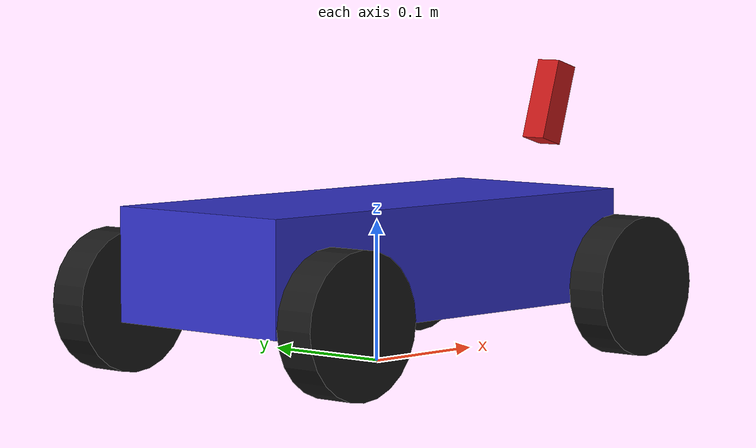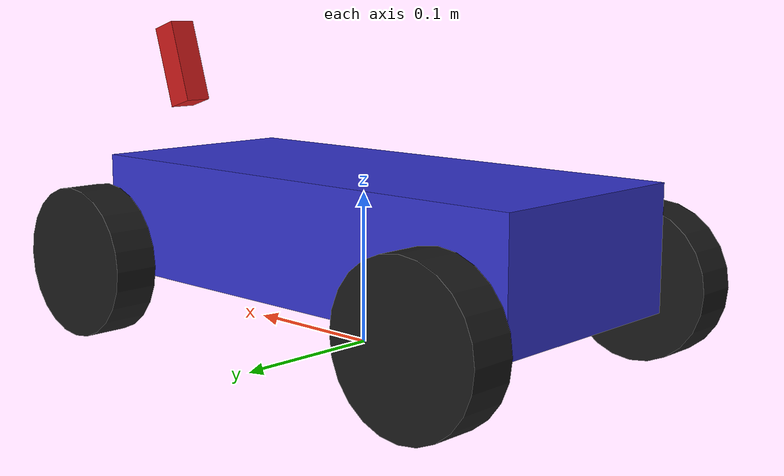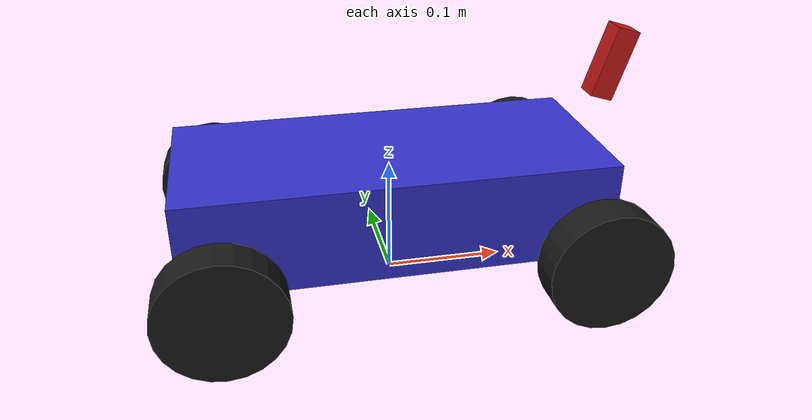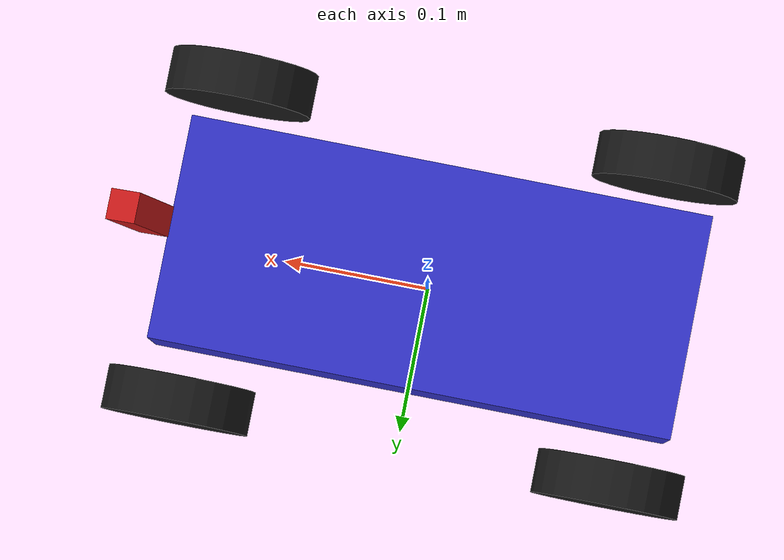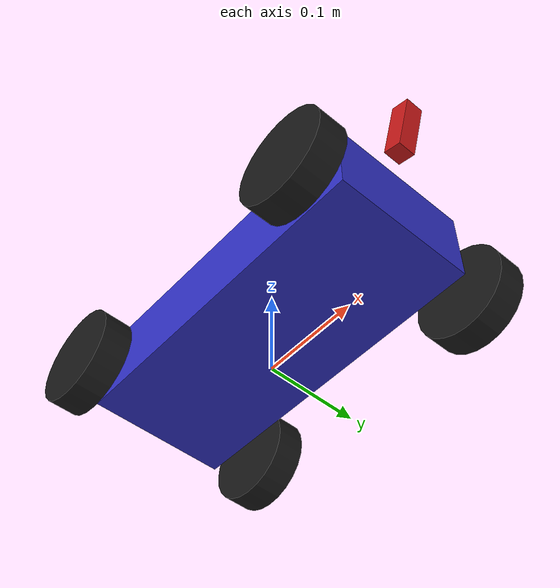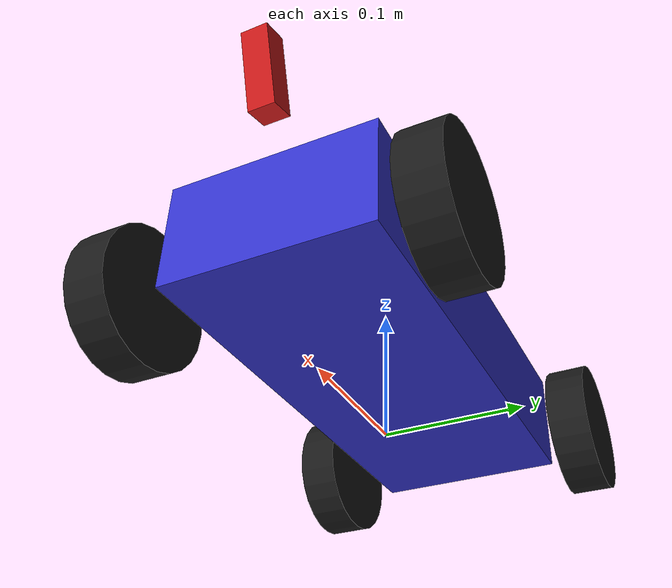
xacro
<?xml version="1.0" encoding="utf-8"?>
<robot name="ackerman_simple" xmlns:xacro="http://www.ros.org/wiki/xacro">

  <!-- ================= BASE ================= -->
  <link name="base_footprint"/>

  <link name="base_link">
    <inertial>
      <origin xyz="0.0115 0 0.0687" rpy="0 0 0" />
      <mass value="1.8886" />
      <inertia ixx="0.00576" ixy="0.0" ixz="0.000003"
               iyy="0.01878" iyz="0.0" izz="0.02437" />
    </inertial>
    <visual>
      <origin xyz="0.01 0 0.05" rpy="0 0 0" />
      <geometry><box size="0.35 0.15 0.08"/></geometry>
      <material name="blue"><color rgba="0.2 0.2 0.8 1" /></material>
    </visual>
    <collision>
      <origin xyz="0.01 0 0.05" rpy="0 0 0" />
      <geometry><box size="0.35 0.15 0.08"/></geometry>
    </collision>
  </link>

  <joint name="base_joint" type="fixed">
    <origin xyz="-0.0117 0 0.02677" rpy="0 0 0" />
    <parent link="base_footprint" />
    <child link="base_link" />
  </joint>

  <!-- ================= FRONT LEFT STEERING & WHEEL ================= -->
  <link name="FL_STEERING_LINK">
    <inertial>
      <origin xyz="-0.0029 0 0" rpy="0 0 0" />
      <mass value="0.0038" />
      <inertia ixx="3e-7" ixy="0" ixz="0" iyy="6e-7" iyz="0" izz="3e-7" />
    </inertial>
  </link>

  <joint name="FL_STEERING_JOINT" type="revolute">
    <origin xyz="0.16174 0.085 0.0235" rpy="0 0 0" />
    <parent link="base_link" />
    <child link="FL_STEERING_LINK" />
    <axis xyz="0 0 1" />
    <limit lower="-0.524" upper="0.524" effort="5" velocity="3" />
  </joint>

  <link name="FL_WHEEL_LINK">
    <inertial>
      <origin xyz="0 0 0" rpy="0 0 0" />
      <mass value="0.0635" />
      <inertia ixx="4.6e-5" ixy="0" ixz="0" iyy="8.9e-5" iyz="0" izz="4.6e-5" />
    </inertial>
    <visual>
      <origin xyz="0 0 0" rpy="1.5707963 0 0" />
      <geometry><cylinder radius="0.05027" length="0.03"/></geometry>
      <material name="black"><color rgba="0.1 0.1 0.1 1"/></material>
    </visual>
    <collision>
      <origin xyz="0 0 0" rpy="1.5707963 0 0" />
      <geometry><cylinder radius="0.05027" length="0.03"/></geometry>
    </collision>
  </link>

  <joint name="FL_WHEEL_JOINT" type="continuous">
    <origin xyz="0 0.0245 0" rpy="0 0 0" />
    <parent link="FL_STEERING_LINK" />
    <child link="FL_WHEEL_LINK" />
    <axis xyz="0 1 0" />
  </joint>

  <!-- ================= FRONT RIGHT STEERING & WHEEL ================= -->
  <link name="FR_STEERING_LINK">
    <inertial>
      <origin xyz="0.0015 0 0" rpy="0 0 0" />
      <mass value="0.0047" />
      <inertia ixx="3e-7" ixy="0" ixz="0" iyy="1e-6" iyz="0" izz="7e-7" />
    </inertial>
  </link>

  <joint name="FR_STEERING_JOINT" type="revolute">
    <origin xyz="0.16174 -0.085 0.0235" rpy="0 0 0" />
    <parent link="base_link" />
    <child link="FR_STEERING_LINK" />
    <axis xyz="0 0 1" />
    <limit lower="-0.524" upper="0.524" effort="5" velocity="3" />
    <!-- Ackerman: inner wheel steers more than outer; plugin handles Ackerman geometry -->
  </joint>

  <link name="FR_WHEEL_LINK">
    <inertial>
      <origin xyz="0 0 0" rpy="0 0 0" />
      <mass value="0.0635" />
      <inertia ixx="4.6e-5" ixy="0" ixz="0" iyy="8.9e-5" iyz="0" izz="4.6e-5" />
    </inertial>
    <visual>
      <origin xyz="0 0 0" rpy="1.5707963 0 0" />
      <geometry><cylinder radius="0.05027" length="0.03"/></geometry>
      <material name="black"><color rgba="0.1 0.1 0.1 1"/></material>
    </visual>
    <collision>
      <origin xyz="0 0 0" rpy="1.5707963 0 0" />
      <geometry><cylinder radius="0.05027" length="0.03"/></geometry>
    </collision>
  </link>

  <joint name="FR_WHEEL_JOINT" type="continuous">
    <origin xyz="0 -0.0245 0" rpy="0 0 0" />
    <parent link="FR_STEERING_LINK" />
    <child link="FR_WHEEL_LINK" />
    <axis xyz="0 1 0" />
  </joint>

  <!-- ================= REAR LEFT WHEEL ================= -->
  <link name="BL_WHEEL_LINK">
    <inertial>
      <origin xyz="0 0 0" rpy="0 0 0" />
      <mass value="0.0616" />
      <inertia ixx="4.6e-5" ixy="0" ixz="0" iyy="8.9e-5" iyz="0" izz="4.6e-5" />
    </inertial>
    <visual>
      <origin xyz="0 0 0" rpy="1.5707963 0 0" />
      <geometry><cylinder radius="0.05027" length="0.03"/></geometry>
      <material name="black"><color rgba="0.1 0.1 0.1 1"/></material>
    </visual>
    <collision>
      <origin xyz="0 0 0" rpy="1.5707963 0 0" />
      <geometry><cylinder radius="0.05027" length="0.03"/></geometry>
    </collision>
  </link>

  <joint name="BL_WHEEL_JOINT" type="continuous">
    <origin xyz="-0.13328 0.1093 0.02075" rpy="0 0 0" />
    <parent link="base_link" />
    <child link="BL_WHEEL_LINK" />
    <axis xyz="0 1 0" />
  </joint>

  <!-- ================= REAR RIGHT WHEEL ================= -->
  <link name="BR_WHEEL_LINK">
    <inertial>
      <origin xyz="0 0 0" rpy="0 0 0" />
      <mass value="0.0616" />
      <inertia ixx="4.6e-5" ixy="0" ixz="0" iyy="8.9e-5" iyz="0" izz="4.6e-5" />
    </inertial>
    <visual>
      <origin xyz="0 0 0" rpy="1.5707963 0 0" />
      <geometry><cylinder radius="0.05027" length="0.03"/></geometry>
      <material name="black"><color rgba="0.1 0.1 0.1 1"/></material>
    </visual>
    <collision>
      <origin xyz="0 0 0" rpy="1.5707963 0 0" />
      <geometry><cylinder radius="0.05027" length="0.03"/></geometry>
    </collision>
  </link>

  <joint name="BR_WHEEL_JOINT" type="continuous">
    <origin xyz="-0.13328 -0.1093 0.02075" rpy="0 0 0" />
    <parent link="base_link" />
    <child link="BR_WHEEL_LINK" />
    <axis xyz="0 1 0" />
  </joint>

  <!-- ================= CAMERA LINK ================= -->
  <link name="CAMERA_LINK">
    <inertial>
      <origin xyz="0 0 0" rpy="0 0 0" />
      <mass value="0.0548" />
      <inertia ixx="6.9e-5" ixy="0" ixz="0" iyy="4e-6" iyz="0" izz="6.6e-5" />
    </inertial>
    <visual>
      <origin xyz="0 0 0" rpy="0 0 0" />
      <geometry><box size="0.02 0.06 0.02"/></geometry>
      <material name="red"><color rgba="0.8 0.1 0.1 1"/></material>
    </visual>
    <collision>
      <origin xyz="0 0 0" rpy="0 0 0" />
      <geometry><box size="0.02 0.06 0.02"/></geometry>
    </collision>
  </link>

  <joint name="CAMERA_JOINT" type="fixed">
    <!-- Slight downward tilt (0.1 rad) to see objects on ground in front -->
    <origin xyz="0.20 0.0 0.15" rpy="0 0.3 0" />
    <parent link="base_link" />
    <child link="CAMERA_JOINT_OPTICAL"/>
  </joint>

  <!-- Optical frame: ROS camera convention (Z forward, X right, Y down) -->
  <link name="CAMERA_JOINT_OPTICAL"/>
  <joint name="CAMERA_OPTICAL_JOINT" type="fixed">
    <origin xyz="0 0 0" rpy="-1.5707963 0 -1.5707963"/>
    <parent link="CAMERA_JOINT_OPTICAL"/>
    <child link="CAMERA_LINK"/>
  </joint>

  <gazebo>
    <plugin filename="libignition-gazebo-ackermann-steering-system.so"
            name="ignition::gazebo::systems::AckermannSteering">
      <left_joint>FL_WHEEL_JOINT</left_joint>
      <right_joint>FR_WHEEL_JOINT</right_joint>
      <left_steering_joint>FL_STEERING_JOINT</left_steering_joint>
      <right_steering_joint>FR_STEERING_JOINT</right_steering_joint>
      <kingpin_width>0.17</kingpin_width>          <!-- front track width  -->
      <steering_limit>0.524</steering_limit>        <!-- ~30° max steer     -->
      <wheel_base>0.295</wheel_base>
      <wheel_separation>0.2186</wheel_separation>   <!-- rear track width   -->
      <wheel_radius>0.05027</wheel_radius>
      <min_velocity>-1.0</min_velocity>
      <max_velocity>2.0</max_velocity>
      <min_acceleration>-3</min_acceleration>
      <max_acceleration>3</max_acceleration>
      <topic>cmd_vel</topic>
      <odom_topic>odom</odom_topic>
      <tf_topic>tf</tf_topic>
      <frame_id>odom</frame_id>
      <child_frame_id>base_footprint</child_frame_id>
      <odom_publish_frequency>50</odom_publish_frequency>
    </plugin>
  </gazebo>

  <gazebo reference="CAMERA_JOINT_OPTICAL">
    <sensor name="camera" type="camera">
      <always_on>true</always_on>
      <update_rate>30</update_rate>
      <visualize>true</visualize>
      <topic>/camera/image_raw</topic>
      <camera>
        <horizontal_fov>1.3962634</horizontal_fov>  <!-- 80 deg -->
        <image>
          <width>640</width>
          <height>480</height>
          <format>R8G8B8</format>
        </image>
        <clip>
          <near>0.05</near>
          <far>15.0</far>
        </clip>
        <noise>
          <type>gaussian</type>
          <mean>0.0</mean>
          <stddev>0.007</stddev>
        </noise>
      </camera>
      <plugin filename="libignition-gazebo-sensors-system.so"
              name="ignition::gazebo::systems::Sensors">
        <render_engine>ogre</render_engine>
      </plugin>
    </sensor>
  </gazebo>

  <!-- ── 3. Joint State Publisher ─────────────────────────────────
       Publishes all joint positions → /joint_states
  ──────────────────────────────────────────────────────────────── -->
  <gazebo>
    <plugin filename="libignition-gazebo-joint-state-publisher-system.so"
            name="ignition::gazebo::systems::JointStatePublisher">
      <topic>joint_states</topic>
    </plugin>
  </gazebo>

</robot>
